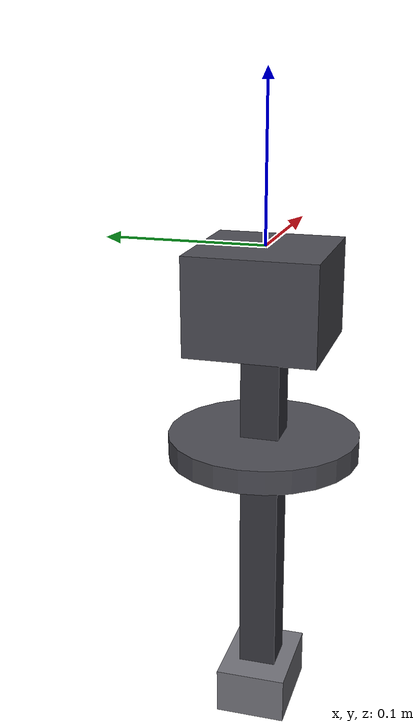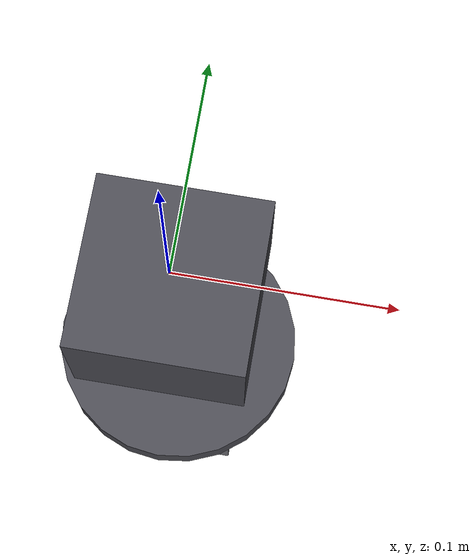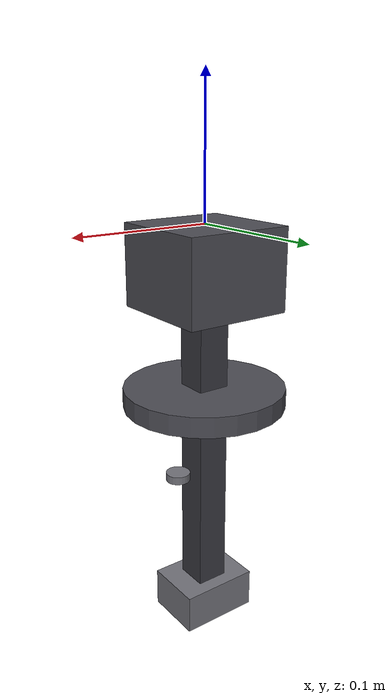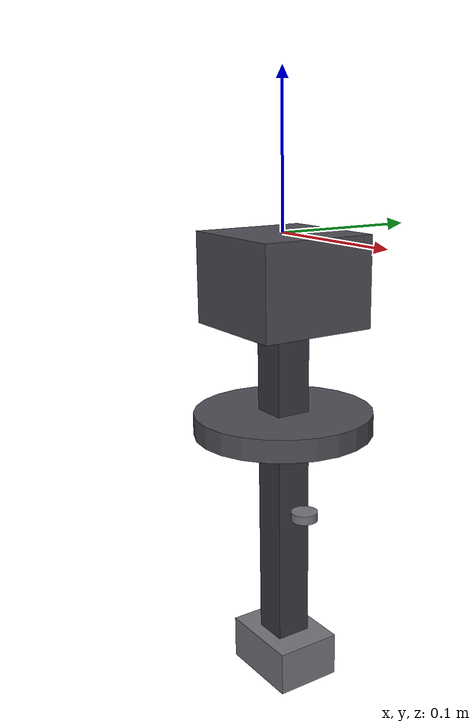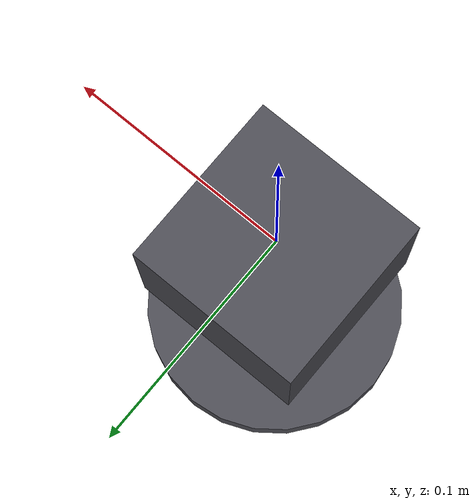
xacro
<?xml version="1.0"?>
<robot name="rotary_hanger" xmlns:xacro="http://ros.org/wiki/xacro">

  <xacro:arg name="rotor_length" default="0.25"/>
  <xacro:arg name="bar_size" default="0.03"/>

  <xacro:property name="rl" value="$(arg rotor_length)"/>
  <xacro:property name="bs" value="$(arg bar_size)"/>

  <material name="hanger_mount_gray">
    <color rgba="0.30 0.30 0.33 1"/>
  </material>
  <material name="hanger_rotor_dark">
    <color rgba="0.22 0.22 0.25 1"/>
  </material>
  <material name="hanger_grip_gray">
    <color rgba="0.45 0.45 0.48 1"/>
  </material>

  <!-- Fixed mount bracket -->
  <link name="hanger_mount">
    <inertial>
      <mass value="5.0"/>
      <inertia ixx="0.05" ixy="0" ixz="0" iyy="0.05" iyz="0" izz="0.01"/>
    </inertial>
    <visual>
      <origin xyz="0 0 -0.03" rpy="0 0 0"/>
      <geometry><box size="0.08 0.08 0.06"/></geometry>
      <material name="hanger_mount_gray"/>
    </visual>
    <collision>
      <origin xyz="0 0 -0.03" rpy="0 0 0"/>
      <geometry><box size="0.08 0.08 0.06"/></geometry>
    </collision>
  </link>

  <!-- Revolute yaw joint -->
  <joint name="hanger_yaw_joint" type="revolute">
    <parent link="hanger_mount"/>
    <child link="hanger_rotor"/>
    <origin xyz="0 0 -0.06" rpy="0 0 0"/>
    <axis xyz="0 0 1"/>
    <limit lower="-6.2832" upper="6.2832" effort="10" velocity="1.0"/>
    <dynamics damping="0.5" friction="0.2"/>
  </joint>

  <!-- Rotating bar -->
  <link name="hanger_rotor">
    <inertial>
      <mass value="2.0"/>
      <inertia ixx="0.01" ixy="0" ixz="0" iyy="0.01" iyz="0" izz="0.002"/>
      <origin xyz="0 0 ${-rl/2}" rpy="0 0 0"/>
    </inertial>

    <!-- Vertical bar -->
    <visual name="rotor_bar">
      <origin xyz="0 0 ${-rl/2}" rpy="0 0 0"/>
      <geometry><box size="${bs*0.8} ${bs*0.8} ${rl}"/></geometry>
      <material name="hanger_rotor_dark"/>
    </visual>
    <collision name="rotor_bar_col">
      <origin xyz="0 0 ${-rl/2}" rpy="0 0 0"/>
      <geometry><box size="${bs*0.8} ${bs*0.8} ${rl}"/></geometry>
    </collision>

    <!-- Workpiece grip/clamp at bottom of rotor -->
    <visual name="grip">
      <origin xyz="0 0 ${-rl + bs*0.5}" rpy="0 0 0"/>
      <geometry><box size="${bs*2} ${bs*1.5} ${bs}"/></geometry>
      <material name="hanger_grip_gray"/>
    </visual>
    <collision name="grip_col">
      <origin xyz="0 0 ${-rl + bs*0.5}" rpy="0 0 0"/>
      <geometry><box size="${bs*2} ${bs*1.5} ${bs}"/></geometry>
    </collision>

    <!-- Index marks at 0°/90°/180°/270° on rotor bar -->
    <visual name="index_0">
      <origin xyz="${bs*0.8} 0 ${-rl/2}" rpy="0 0 0"/>
      <geometry><cylinder radius="${bs*0.3}" length="${bs*0.2}"/></geometry>
      <material name="hanger_grip_gray"/>
    </visual>
  </link>

  <!-- Anti-sway guide ring (visual only, at mid-height) -->
  <link name="hanger_guide">
    <inertial>
      <mass value="0.5"/>
      <inertia ixx="0.001" ixy="0" ixz="0" iyy="0.001" iyz="0" izz="0.001"/>
    </inertial>
    <visual>
      <origin xyz="0 0 0" rpy="0 0 0"/>
      <geometry>
        <cylinder radius="${bs*2}" length="${bs*0.5}"/>
      </geometry>
      <material name="hanger_mount_gray"/>
    </visual>
  </link>
  <joint name="guide_to_mount" type="fixed">
    <parent link="hanger_mount"/>
    <child link="hanger_guide"/>
    <origin xyz="0 0 ${-rl/2}" rpy="0 0 0"/>
  </joint>

  <!-- Gazebo: yaw joint position controller -->
  <gazebo>
    <plugin name="hanger_yaw_controller" filename="libgazebo_ros_control.so">
      <robotNamespace>/rotary_hanger</robotNamespace>
    </plugin>
  </gazebo>

</robot>
